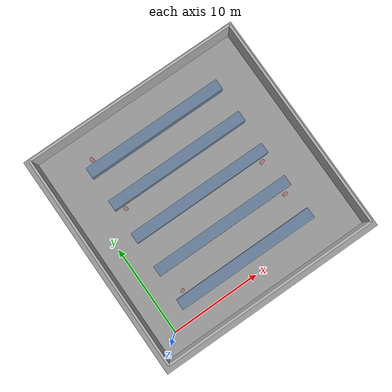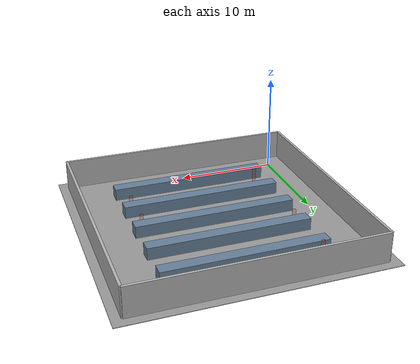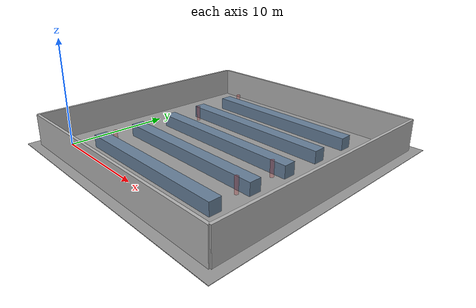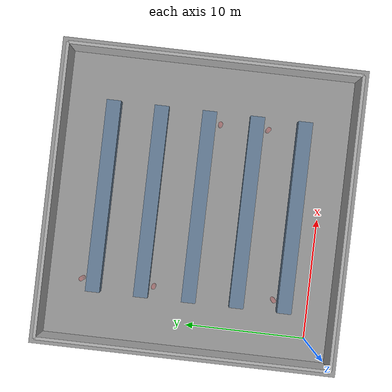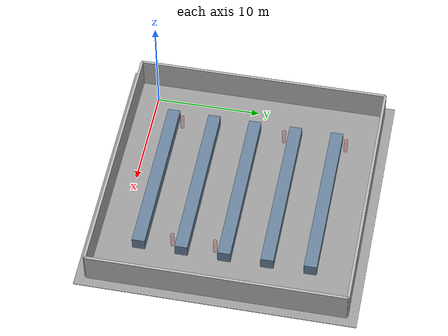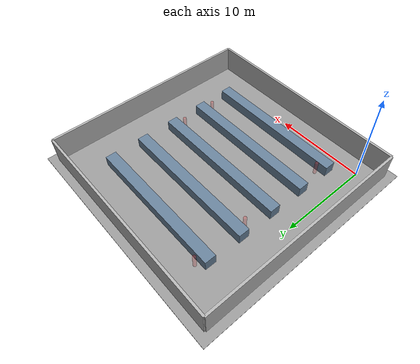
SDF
<?xml version="1.0"?>
<sdf version="1.6">
  <world name="factory_environment">
    <!-- Direct Light to prevent online fetching -->
    <!-- ==================== sun：方向光 ==================== -->
    <!-- 内置方向光：从 (-0.5, 0.1, -0.9) 方向照射，开阴影，
         衰减范围 1000m，避免依赖在线 sun 模型。 -->
    <light name="sun" type="directional">
      <cast_shadows>1</cast_shadows>
      <pose>0 0 10 0 0 0</pose>
      <diffuse>0.8 0.8 0.8 1</diffuse>
      <specular>0.2 0.2 0.2 1</specular>
      <attenuation>
        <range>1000</range>
        <constant>0.9</constant>
        <linear>0.01</linear>
        <quadratic>0.001</quadratic>
      </attenuation>
      <direction>-0.5 0.1 -0.9</direction>
    </light>

    <!-- Ground -->
    <!-- ==================== ground：地面 ==================== -->
    <!-- 静态地面：26m × 26m × 0.05m，整体位于 (10, 10) 中心，
         使场地有效范围约为 x/y ∈ [0, 20]（与巡检点坐标对齐）。 -->
    <model name="ground">
      <static>true</static>
      <link name="ground_link">
        <collision name="collision">
          <geometry><box><size>26 26 0.05</size></box></geometry>
        </collision>
        <visual name="visual">
          <geometry><box><size>26 26 0.05</size></box></geometry>
          <material>
            <ambient>0.6 0.6 0.6 1</ambient>
            <diffuse>0.6 0.6 0.6 1</diffuse>
          </material>
        </visual>
      </link>
      <pose>10 10 -0.025 0 0 0</pose>
    </model>

    <!-- Walls -->
    <!-- ==================== 四面围墙 ==================== -->
    <!-- 北墙（y=22）、南墙（y=-2）、西墙（x=-2）、东墙（x=22）：
         均为 24m 长 × 0.25m 厚 × 3.0m 高的静态墙体，围成
         [0,20]×[0,20] 的有效导航区域。 -->
    <model name="north_wall">
      <static>true</static>
      <pose>10 22 1.5 0 0 0</pose>
      <link name="link">
        <collision name="collision"><geometry><box><size>24 0.25 3.0</size></box></geometry></collision>
        <visual name="visual"><geometry><box><size>24 0.25 3.0</size></box></geometry><material><ambient>0.7 0.7 0.7 1</ambient><diffuse>0.7 0.7 0.7 1</diffuse></material></visual>
      </link>
    </model>
    <model name="south_wall">
      <static>true</static>
      <pose>10 -2 1.5 0 0 0</pose>
      <link name="link">
        <collision name="collision"><geometry><box><size>24 0.25 3.0</size></box></geometry></collision>
        <visual name="visual"><geometry><box><size>24 0.25 3.0</size></box></geometry><material><ambient>0.7 0.7 0.7 1</ambient><diffuse>0.7 0.7 0.7 1</diffuse></material></visual>
      </link>
    </model>
    <model name="west_wall">
      <static>true</static>
      <pose>-2 10 1.5 0 0 0</pose>
      <link name="link">
        <collision name="collision"><geometry><box><size>0.25 24 3.0</size></box></geometry></collision>
        <visual name="visual"><geometry><box><size>0.25 24 3.0</size></box></geometry><material><ambient>0.7 0.7 0.7 1</ambient><diffuse>0.7 0.7 0.7 1</diffuse></material></visual>
      </link>
    </model>
    <model name="east_wall">
      <static>true</static>
      <pose>22 10 1.5 0 0 0</pose>
      <link name="link">
        <collision name="collision"><geometry><box><size>0.25 24 3.0</size></box></geometry></collision>
        <visual name="visual"><geometry><box><size>0.25 24 3.0</size></box></geometry><material><ambient>0.7 0.7 0.7 1</ambient><diffuse>0.7 0.7 0.7 1</diffuse></material></visual>
      </link>
    </model>

    <!-- 5 Rows of Desks/Machines with 4m spacing -->
    <!-- ==================== 5 排工作台（desk_row_1~5） ==================== -->
    <!-- 静态设备排：每排 16m × 1.2m × 1.2m，位于 x=10 沿 y 方向
         每 4m 一排（y=18/14/10/6/2），将场地分割成
         y=4/8/12/16/20 五条东西向巡检通道。 -->
    <model name="desk_row_1">
      <static>true</static>
      <pose>10 18 0.6 0 0 0</pose>
      <link name="link">
        <collision name="collision"><geometry><box><size>16 1.2 1.2</size></box></geometry></collision>
        <visual name="visual"><geometry><box><size>16 1.2 1.2</size></box></geometry><material><ambient>0.4 0.5 0.6 1</ambient><diffuse>0.4 0.5 0.6 1</diffuse></material></visual>
      </link>
    </model>
    <model name="desk_row_2">
      <static>true</static>
      <pose>10 14 0.6 0 0 0</pose>
      <link name="link">
        <collision name="collision"><geometry><box><size>16 1.2 1.2</size></box></geometry></collision>
        <visual name="visual"><geometry><box><size>16 1.2 1.2</size></box></geometry><material><ambient>0.4 0.5 0.6 1</ambient><diffuse>0.4 0.5 0.6 1</diffuse></material></visual>
      </link>
    </model>
    <model name="desk_row_3">
      <static>true</static>
      <pose>10 10 0.6 0 0 0</pose>
      <link name="link">
        <collision name="collision"><geometry><box><size>16 1.2 1.2</size></box></geometry></collision>
        <visual name="visual"><geometry><box><size>16 1.2 1.2</size></box></geometry><material><ambient>0.4 0.5 0.6 1</ambient><diffuse>0.4 0.5 0.6 1</diffuse></material></visual>
      </link>
    </model>
    <model name="desk_row_4">
      <static>true</static>
      <pose>10 6 0.6 0 0 0</pose>
      <link name="link">
        <collision name="collision"><geometry><box><size>16 1.2 1.2</size></box></geometry></collision>
        <visual name="visual"><geometry><box><size>16 1.2 1.2</size></box></geometry><material><ambient>0.4 0.5 0.6 1</ambient><diffuse>0.4 0.5 0.6 1</diffuse></material></visual>
      </link>
    </model>
    <model name="desk_row_5">
      <static>true</static>
      <pose>10 2 0.6 0 0 0</pose>
      <link name="link">
        <collision name="collision"><geometry><box><size>16 1.2 1.2</size></box></geometry></collision>
        <visual name="visual"><geometry><box><size>16 1.2 1.2</size></box></geometry><material><ambient>0.4 0.5 0.6 1</ambient><diffuse>0.4 0.5 0.6 1</diffuse></material></visual>
      </link>
    </model>

    <!-- ==================== SCAN PROXIES ==================== -->
    <!-- ==================== 扫描代理（动态障碍物） ==================== -->
    <!-- 5 个红色半透明圆柱代理（碰撞半径 0.20m、高 1.5m），
         关闭重力、摩擦置 0（surface 段），由
         libm20_waypoint_obstacle_plugin 沿各自轨迹东西向往复，
         是 /scan 与 Nav2 costmap 看到的唯一移动障碍。 -->

    <!--
      Worker 1: Y=3 东西巡逻 X:3→17
      保持原始通道，避开 Y=2 设备行与 Y=4 巡检点行。
    -->
    <!-- worker_1_scan_proxy：Y=3 通道东西巡逻（x=3↔17，14s 走 14m + 1.5s 转向）。 -->
    <model name="worker_1_scan_proxy">
      <static>false</static>
      <pose>3 3 0.75 0 0 0</pose>
      <link name="body">
        <gravity>false</gravity>
        <collision name="collision">
          <geometry><cylinder><radius>0.20</radius><length>1.5</length></cylinder></geometry>
          <surface>
            <contact><collide_without_contact>false</collide_without_contact></contact>
            <friction><ode><mu>0.0</mu><mu2>0.0</mu2></ode></friction>
          </surface>
        </collision>
        <visual name="visual">
          <geometry><cylinder><radius>0.18</radius><length>1.5</length></cylinder></geometry>
          <material><ambient>0.9 0.1 0.1 0.25</ambient><diffuse>0.9 0.1 0.1 0.25</diffuse></material>
          <transparency>0.75</transparency>
        </visual>
      </link>
      <!-- 路点运动插件：x=3↔17 往复（每程 14s + 1.5s 转向）。 -->
      <plugin name="waypoint_motion" filename="libm20_waypoint_obstacle_plugin.so">
        <loop>true</loop>
        <!-- time x y z roll pitch yaw -->
        <trajectory>0 3 3 0.75 0 0 0;14 17 3 0.75 0 0 0;15.5 17 3 0.75 0 0 3.14159;29.5 3 3 0.75 0 0 3.14159;31 3 3 0.75 0 0 6.28318</trajectory>
      </plugin>
    </model>

    <!--
      Worker 2: Y=9 东西巡逻 X:17→3
      保持原始通道，避开 Y=8 巡检点行与 Y=10 设备行。
    -->
    <!-- worker_2_scan_proxy：Y=9 通道东西巡逻（x=17↔3，反向）。 -->
    <model name="worker_2_scan_proxy">
      <static>false</static>
      <pose>17 9 0.75 0 0 3.14159</pose>
      <link name="body">
        <gravity>false</gravity>
        <collision name="collision">
          <geometry><cylinder><radius>0.20</radius><length>1.5</length></cylinder></geometry>
          <surface>
            <contact><collide_without_contact>false</collide_without_contact></contact>
            <friction><ode><mu>0.0</mu><mu2>0.0</mu2></ode></friction>
          </surface>
        </collision>
        <visual name="visual">
          <geometry><cylinder><radius>0.18</radius><length>1.5</length></cylinder></geometry>
          <material><ambient>0.9 0.1 0.1 0.25</ambient><diffuse>0.9 0.1 0.1 0.25</diffuse></material>
          <transparency>0.75</transparency>
        </visual>
      </link>
      <!-- 路点运动插件：x=17↔3 往复（每程 14s + 1.5s 转向）。 -->
      <plugin name="waypoint_motion" filename="libm20_waypoint_obstacle_plugin.so">
        <loop>true</loop>
        <trajectory>0 17 9 0.75 0 0 3.14159;14 3 9 0.75 0 0 3.14159;15.5 3 9 0.75 0 0 6.28318;29.5 17 9 0.75 0 0 6.28318;31 17 9 0.75 0 0 9.42477</trajectory>
      </plugin>
    </model>

    <!--
      Worker 3: Y=19 东西巡逻 X:3→17
      保持原始通道，避开 Y=18 设备行与 Y=20 巡检点行。
    -->
    <!-- worker_3_scan_proxy：Y=19 通道东西巡逻（x=3↔17）。 -->
    <model name="worker_3_scan_proxy">
      <static>false</static>
      <pose>3 19 0.75 0 0 0</pose>
      <link name="body">
        <gravity>false</gravity>
        <collision name="collision">
          <geometry><cylinder><radius>0.20</radius><length>1.5</length></cylinder></geometry>
          <surface>
            <contact><collide_without_contact>false</collide_without_contact></contact>
            <friction><ode><mu>0.0</mu><mu2>0.0</mu2></ode></friction>
          </surface>
        </collision>
        <visual name="visual">
          <geometry><cylinder><radius>0.18</radius><length>1.5</length></cylinder></geometry>
          <material><ambient>0.9 0.1 0.1 0.25</ambient><diffuse>0.9 0.1 0.1 0.25</diffuse></material>
          <transparency>0.75</transparency>
        </visual>
      </link>
      <!-- 路点运动插件：x=3↔17 往复（每程 14s + 1.5s 转向）。 -->
      <plugin name="waypoint_motion" filename="libm20_waypoint_obstacle_plugin.so">
        <loop>true</loop>
        <trajectory>0 3 19 0.75 0 0 0;14 17 19 0.75 0 0 0;15.5 17 19 0.75 0 0 3.14159;29.5 3 19 0.75 0 0 3.14159;31 3 19 0.75 0 0 6.28318</trajectory>
      </plugin>
    </model>

    <!--
      Worker 4: Y=5 东西巡逻 X:17→3
      保留原矩形路线的下侧通道，去掉穿过设备行的竖向段。
    -->
    <!-- worker_4_scan_proxy：Y=5 通道东西巡逻（x=17↔3，反向）。 -->
    <model name="worker_4_scan_proxy">
      <static>false</static>
      <pose>17 5 0.75 0 0 3.14159</pose>
      <link name="body">
        <gravity>false</gravity>
        <collision name="collision">
          <geometry><cylinder><radius>0.20</radius><length>1.5</length></cylinder></geometry>
          <surface>
            <contact><collide_without_contact>false</collide_without_contact></contact>
            <friction><ode><mu>0.0</mu><mu2>0.0</mu2></ode></friction>
          </surface>
        </collision>
        <visual name="visual">
          <geometry><cylinder><radius>0.18</radius><length>1.5</length></cylinder></geometry>
          <material><ambient>0.9 0.1 0.1 0.25</ambient><diffuse>0.9 0.1 0.1 0.25</diffuse></material>
          <transparency>0.75</transparency>
        </visual>
      </link>
      <!-- 路点运动插件：x=17↔3 往复（每程 14s + 1.5s 转向）。 -->
      <plugin name="waypoint_motion" filename="libm20_waypoint_obstacle_plugin.so">
        <loop>true</loop>
        <trajectory>0 17 5 0.75 0 0 3.14159;14 3 5 0.75 0 0 3.14159;15.5 3 5 0.75 0 0 6.28318;29.5 17 5 0.75 0 0 6.28318;31 17 5 0.75 0 0 9.42477</trajectory>
      </plugin>
    </model>

    <!--
      Worker 5: Y=13 东西巡逻 X:3→17
      保留原矩形路线的下侧通道，去掉穿过设备行的竖向段。
    -->
    <!-- worker_5_scan_proxy：Y=13 通道东西巡逻（x=3↔17）。 -->
    <model name="worker_5_scan_proxy">
      <static>false</static>
      <pose>3 13 0.75 0 0 0</pose>
      <link name="body">
        <gravity>false</gravity>
        <collision name="collision">
          <geometry><cylinder><radius>0.20</radius><length>1.5</length></cylinder></geometry>
          <surface>
            <contact><collide_without_contact>false</collide_without_contact></contact>
            <friction><ode><mu>0.0</mu><mu2>0.0</mu2></ode></friction>
          </surface>
        </collision>
        <visual name="visual">
          <geometry><cylinder><radius>0.18</radius><length>1.5</length></cylinder></geometry>
          <material><ambient>0.9 0.1 0.1 0.25</ambient><diffuse>0.9 0.1 0.1 0.25</diffuse></material>
          <transparency>0.75</transparency>
        </visual>
      </link>
      <!-- 路点运动插件：x=3↔17 往复（每程 14s + 1.5s 转向）。 -->
      <plugin name="waypoint_motion" filename="libm20_waypoint_obstacle_plugin.so">
        <loop>true</loop>
        <trajectory>0 3 13 0.75 0 0 0;14 17 13 0.75 0 0 0;15.5 17 13 0.75 0 0 3.14159;29.5 3 13 0.75 0 0 3.14159;31 3 13 0.75 0 0 6.28318</trajectory>
      </plugin>
    </model>

    <!-- 说明：v2 版本刻意移除了动态人物的 Gazebo actor 视觉动画，
         因为 actor 使用独立的动画时间线，容易与激光可见的扫描代理
         发生漂移不一致；只保留圆柱代理，保证 Gazebo 所见即
         Nav2/SLAM 在 /scan 中所见。 -->

  </world>
</sdf>
